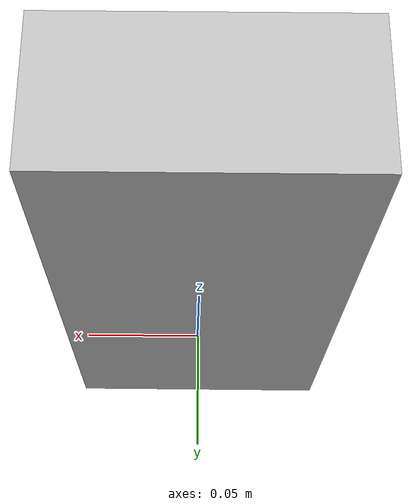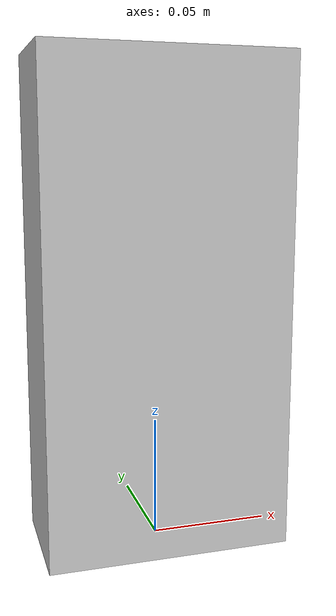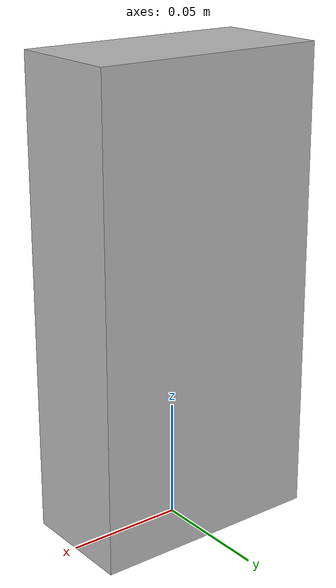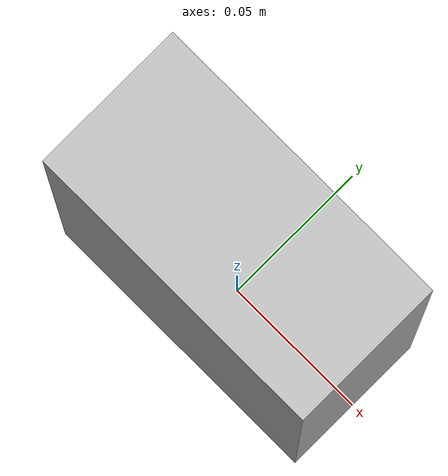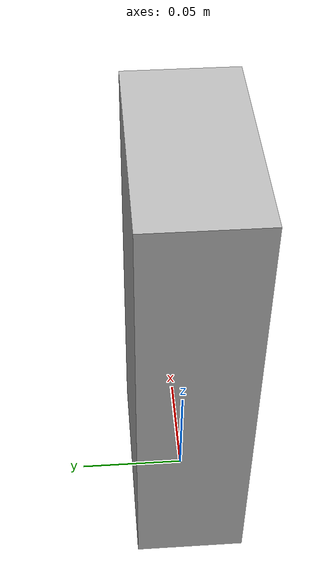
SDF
<sdf version="1.6">
        <model name="box_10_5_20">
            <link name="link_1">
                <pose>0 0 0.1 0 0 0 0</pose>
                <inertial>
                    <inertia>
                        <ixx>0.03541666666666667</ixx>
                        <ixy>0</ixy>
                        <ixz>0</ixz>
                        <iyy>0.04166666666666667</iyy>
                        <iyz>0</iyz>
                        <izz>0.010416666666666668</izz>
                    </inertia>
                    <mass>10.0</mass>
                </inertial>
                <visual name="visual">
                    <geometry>
                        <box>
                            <size>0.1 0.05 0.2</size>
                        </box>
                    </geometry>
                </visual>
                <collision name="box_collision">
                    <geometry>
                        <box>
                            <size>0.1 0.05 0.2</size>
                        </box>
                    </geometry>
                    <surface>
                        <friction>
                            <ode>
                                <mu>0.2</mu>
                                <mu2>0.2</mu2>
                            </ode>
                        </friction>
                    </surface>
                </collision>
            </link>
            <plugin name="position_3d_plugin" filename="libposition_3d_plugin.so">
                <kP_pos>15</kP_pos>
                <kI_pos>0.0</kI_pos>
                <kD_pos>0.0</kD_pos>
                <kP_vel>100.0</kP_vel>
                <kI_vel>0.0</kI_vel>
                <kD_vel>0.0</kD_vel>
                <max_force>40.0</max_force>
                <max_vel>0.5</max_vel>
                <kP_rot>0.1</kP_rot>
                <kI_rot>0.0</kI_rot>
                <kD_rot>0.0</kD_rot>
                <kP_rot_vel>0.0</kP_rot_vel>
                <kI_rot_vel>0.0</kI_rot_vel>
                <kD_rot_vel>0.0</kD_rot_vel>
                <max_torque>0.0</max_torque>
                <max_rot_vel>0.0</max_rot_vel>
                <link>link_1</link>
            </plugin>
        </model>
    </sdf>
